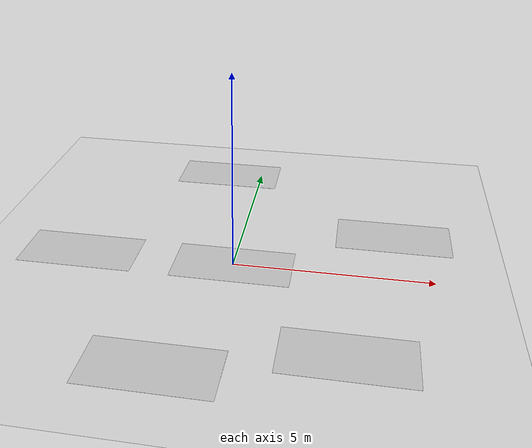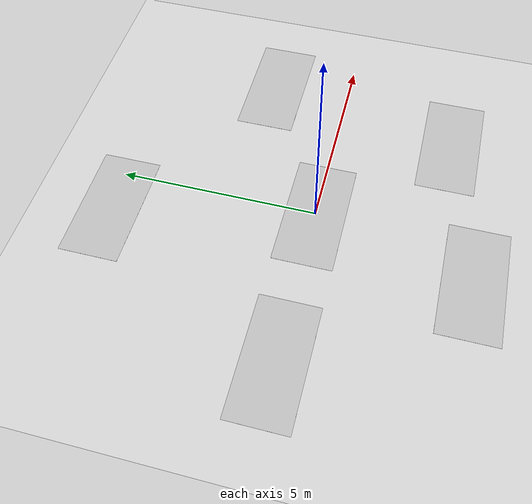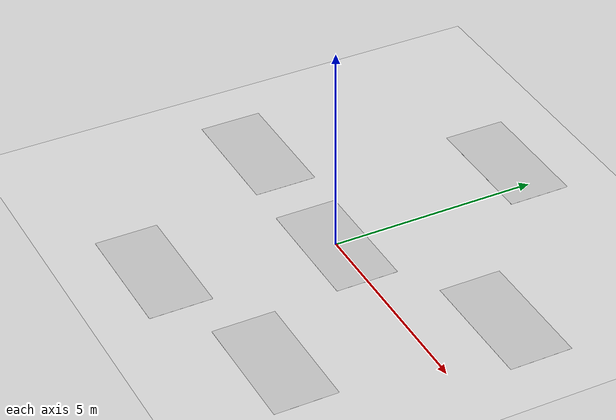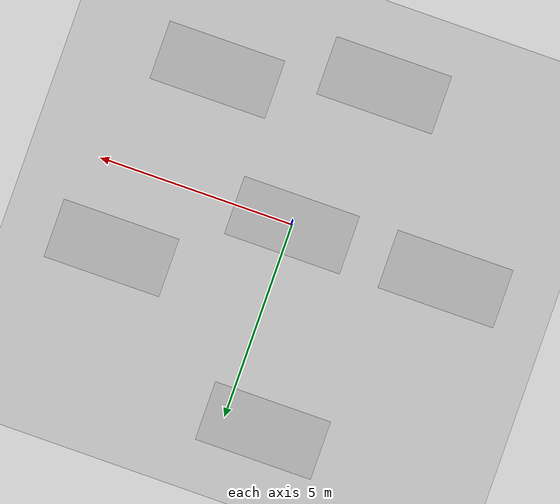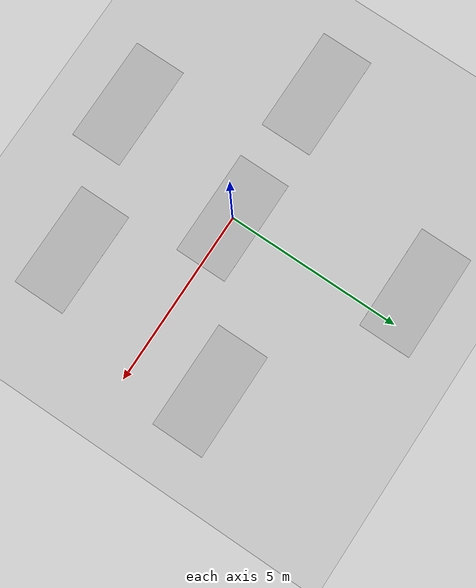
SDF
<?xml version="1.0" ?>
<sdf version="1.5">
	<world name="default">
		<!-- People -->
		<include>
			<uri>model://face1</uri>
			<pose>0 0 0 0 0 -1.57</pose>
		</include>
		<include>
			<uri>model://face2</uri>
			<pose>3 -3 0 0 0 -1.57</pose>
		</include>
		<include>
			<uri>model://face3</uri>
			<pose>-1 -4 0 0 0 -1.57</pose>
		</include>
		<include>
			<uri>model://face4</uri>
			<pose>4 2 0 0 0 -1.57</pose>
		</include>
		<include>
			<uri>model://face5</uri>
			<pose>-4 0 0 0 0 -1.57</pose>
		</include>
		<include>
			<uri>model://face6</uri>
			<pose>-1 5 0 0 0 -1.57</pose>
		</include>

		<!-- A global light source -->
		<include>
			<uri>model://sun</uri>
		</include>

		<include>
			<uri>model://rescue_area</uri>
			<pose>2 0 0 0 0 -1.57</pose>
		</include>

		<!-- Gazebo required specifications -->
		<physics name='default_physics' default='0' type='ode'>
			<gravity>0 0 -9.8066</gravity>
			<ode>
				<solver>
					<type>quick</type>
					<iters>10</iters>
					<sor>1.3</sor>
					<use_dynamic_moi_rescaling>0</use_dynamic_moi_rescaling>
				</solver>
				<constraints>
					<cfm>0</cfm>
					<erp>0.2</erp>
					<contact_max_correcting_vel>100</contact_max_correcting_vel>
					<contact_surface_layer>0.001</contact_surface_layer>
				</constraints>
			</ode>
			<max_step_size>0.004</max_step_size>
			<real_time_factor>1</real_time_factor>
			<real_time_update_rate>250</real_time_update_rate>
			<magnetic_field>6.0e-6 2.3e-5 -4.2e-5</magnetic_field>
		</physics>

	</world>
</sdf>

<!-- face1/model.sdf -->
<sdf version='1.4'>
  <model name='face1'>
    <static>true</static>
    <link name='link'>
      <collision name='collision'>
        <geometry>
          <plane>
            <normal>0 0 1</normal>
            <size>1 1</size>
          </plane>
        </geometry>
        <surface>
          <friction>
            <ode>
              <mu>0.5</mu>
              <mu2>.5</mu2>
            </ode>
          </friction>
        </surface>
      </collision>

      <visual name='visual_0'>
        <pose>0 0 0 0 0 0</pose>

        <cast_shadows>false</cast_shadows>
        <geometry>
          <plane>
            <normal>0 0 1</normal>
            <size>1.5 3</size>
          </plane>
        </geometry>
        <material>
          <script>
            <uri>model://face1/materials/scripts</uri>
            <uri>model://face1/materials/textures</uri>
            <name>vrc/face1</name>
          </script>
        </material>
      </visual>
    </link>
  </model>
</sdf>

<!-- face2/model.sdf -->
<sdf version='1.4'>
  <model name='face2'>
    <static>true</static>
    <link name='link'>
      <collision name='collision'>
        <geometry>
          <plane>
            <normal>0 0 1</normal>
            <size>1 1</size>
          </plane>
        </geometry>
        <surface>
          <friction>
            <ode>
              <mu>0.5</mu>
              <mu2>.5</mu2>
            </ode>
          </friction>
        </surface>
      </collision>

      <visual name='visual_0'>
        <pose>0 0 0 0 0 0</pose>

        <cast_shadows>false</cast_shadows>
        <geometry>
          <plane>
            <normal>0 0 1</normal>
            <size>1.5 3</size>
          </plane>
        </geometry>
        <material>
          <script>
            <uri>model://face2/materials/scripts</uri>
            <uri>model://face2/materials/textures</uri>
            <name>vrc/face2</name>
          </script>
        </material>
      </visual>
    </link>
  </model>
</sdf>

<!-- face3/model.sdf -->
<sdf version='1.4'>
  <model name='face3'>
    <static>true</static>
    <link name='link'>
      <collision name='collision'>
        <geometry>
          <plane>
            <normal>0 0 1</normal>
            <size>1 1</size>
          </plane>
        </geometry>
        <surface>
          <friction>
            <ode>
              <mu>0.5</mu>
              <mu2>.5</mu2>
            </ode>
          </friction>
        </surface>
      </collision>

      <visual name='visual_0'>
        <pose>0 0 0 0 0 0</pose>

        <cast_shadows>false</cast_shadows>
        <geometry>
          <plane>
            <normal>0 0 1</normal>
            <size>1.5 3</size>
          </plane>
        </geometry>
        <material>
          <script>
            <uri>model://face3/materials/scripts</uri>
            <uri>model://face3/materials/textures</uri>
            <name>vrc/face3</name>
          </script>
        </material>
      </visual>
    </link>
  </model>
</sdf>

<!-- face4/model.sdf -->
<sdf version='1.4'>
  <model name='face4'>
    <static>true</static>
    <link name='link'>
      <collision name='collision'>
        <geometry>
          <plane>
            <normal>0 0 1</normal>
            <size>1 1</size>
          </plane>
        </geometry>
        <surface>
          <friction>
            <ode>
              <mu>0.5</mu>
              <mu2>.5</mu2>
            </ode>
          </friction>
        </surface>
      </collision>

      <visual name='visual_0'>
        <pose>0 0 0 0 0 0</pose>

        <cast_shadows>false</cast_shadows>
        <geometry>
          <plane>
            <normal>0 0 1</normal>
            <size>1.5 3</size>
          </plane>
        </geometry>
        <material>
          <script>
            <uri>model://face4/materials/scripts</uri>
            <uri>model://face4/materials/textures</uri>
            <name>vrc/face4</name>
          </script>
        </material>
      </visual>
    </link>
  </model>
</sdf>

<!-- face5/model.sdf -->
<sdf version='1.4'>
  <model name='face5'>
    <static>true</static>
    <link name='link'>
      <collision name='collision'>
        <geometry>
          <plane>
            <normal>0 0 1</normal>
            <size>1 1</size>
          </plane>
        </geometry>
        <surface>
          <friction>
            <ode>
              <mu>0.5</mu>
              <mu2>.5</mu2>
            </ode>
          </friction>
        </surface>
      </collision>

      <visual name='visual_0'>
        <pose>0 0 0 0 0 0</pose>

        <cast_shadows>false</cast_shadows>
        <geometry>
          <plane>
            <normal>0 0 1</normal>
            <size>1.5 3</size>
          </plane>
        </geometry>
        <material>
          <script>
            <uri>model://face5/materials/scripts</uri>
            <uri>model://face5/materials/textures</uri>
            <name>vrc/face5</name>
          </script>
        </material>
      </visual>
    </link>
  </model>
</sdf>

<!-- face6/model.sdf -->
<sdf version='1.4'>
  <model name='face6'>
    <static>true</static>
    <link name='link'>
      <collision name='collision'>
        <geometry>
          <plane>
            <normal>0 0 1</normal>
            <size>1 1</size>
          </plane>
        </geometry>
        <surface>
          <friction>
            <ode>
              <mu>0.5</mu>
              <mu2>.5</mu2>
            </ode>
          </friction>
        </surface>
      </collision>

      <visual name='visual_0'>
        <pose>0 0 0 0 0 0</pose>

        <cast_shadows>false</cast_shadows>
        <geometry>
          <plane>
            <normal>0 0 1</normal>
            <size>1.5 3</size>
          </plane>
        </geometry>
        <material>
          <script>
            <uri>model://face6/materials/scripts</uri>
            <uri>model://face6/materials/textures</uri>
            <name>vrc/face6</name>
          </script>
        </material>
      </visual>
    </link>
  </model>
</sdf>

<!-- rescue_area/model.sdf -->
<sdf version='1.4'>
  <model name='rescue_area'>
    <static>true</static>
    <link name='link'>
      <collision name='collision'>
        <geometry>
          <plane>
            <normal>0 0 1</normal>
            <size>1 1</size>
          </plane>
        </geometry>
        <surface>
          <friction>
            <ode>
              <mu>0.5</mu>
              <mu2>.5</mu2>
            </ode>
          </friction>
        </surface>
      </collision>

      <visual name='visual_0'>
        <pose>0 0 0 0 0 0</pose>

        <cast_shadows>false</cast_shadows>
        <geometry>
          <plane>
            <normal>0 0 1</normal>
            <size>15 19</size>
          </plane>
        </geometry>
        <material>
          <script>
            <uri>model://rescue_area/materials/scripts</uri>
            <uri>model://rescue_area/materials/textures</uri>
            <name>vrc/rescue_area</name>
          </script>
        </material>
      </visual>
    </link>
  </model>
</sdf>
